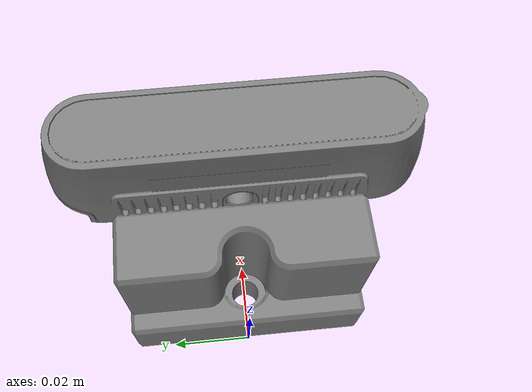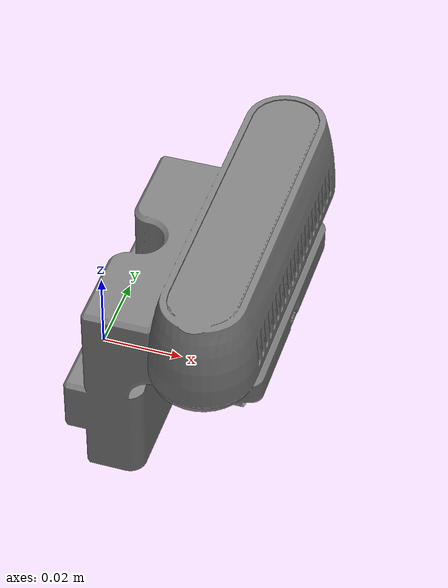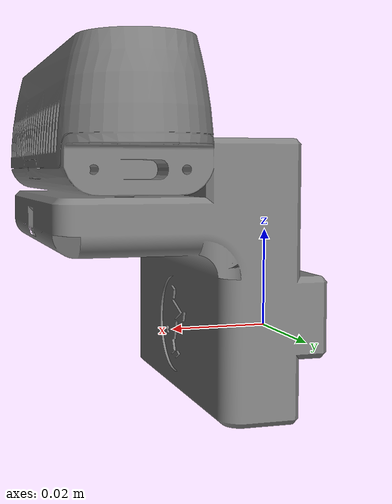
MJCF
<mujoco model="camera_assembly">
  <compiler angle="radian" meshdir="assets"/>

  <asset>
    <mesh name="camera_assembly" file="camera_assembly.stl"/>
  </asset>

  <worldbody>
    <body name="camera_mount">
      <inertial mass="0.001" pos="0 0 0" diaginertia="1e-6 1e-6 1e-6"/>
      <geom mesh="camera_assembly" type="mesh" contype="0" conaffinity="0" group="2"/>
      <camera name="rgb" pos="0.06 0 0.05" quat="0 0.7071 0.7071 0" fovy="69"/>
    </body>
  </worldbody>

</mujoco>
